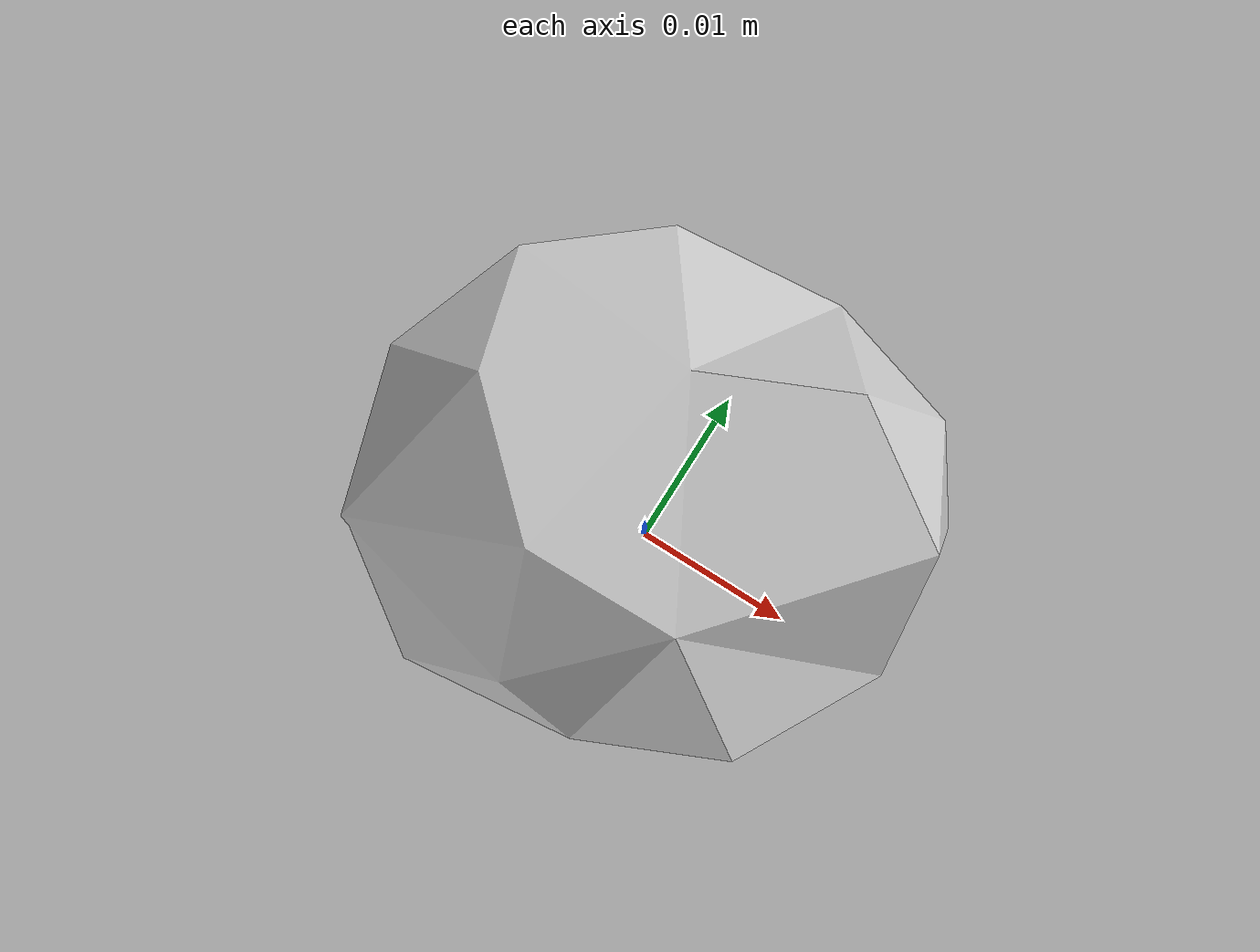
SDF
<?xml version='1.0'?>
<sdf version="1.5">
  <model name="strawberry_04">
    <pose>0 0 0.02 3.14 0 0</pose>
    <static>false</static>
    <link name="link">
      <inertial>
        <mass>0.01</mass>
        <inertia>
          <ixx>0.000001397</ixx>
          <iyy>0.000001397</iyy>
          <izz>0.000000919</izz>
        </inertia>
      </inertial>
      <collision name="collision">
        <geometry>
          <mesh>
            <uri>model://strawberry_04/collision/04.dae</uri>
          </mesh>
        </geometry>
      </collision>
      <visual name="visual">
        <geometry>
          <mesh>
            <uri>model://strawberry_04/visual/04.dae</uri>
          </mesh>
        </geometry>
        <material>
          <script>
            <uri>model://strawberry_04/materials/scripts</uri>
            <uri>model://strawberry_04/materials/textures</uri>
            <name>strawberry_04</name>
          </script>
        </material>
      </visual>
    </link>
  </model>
</sdf>
